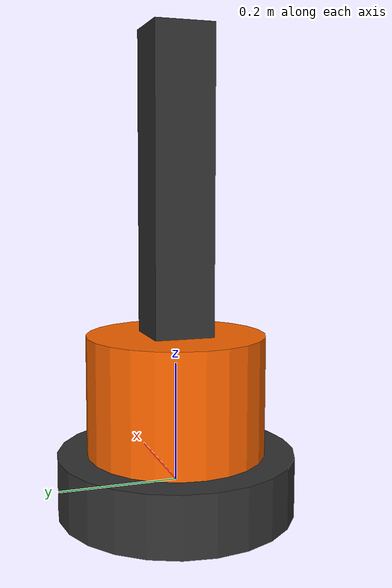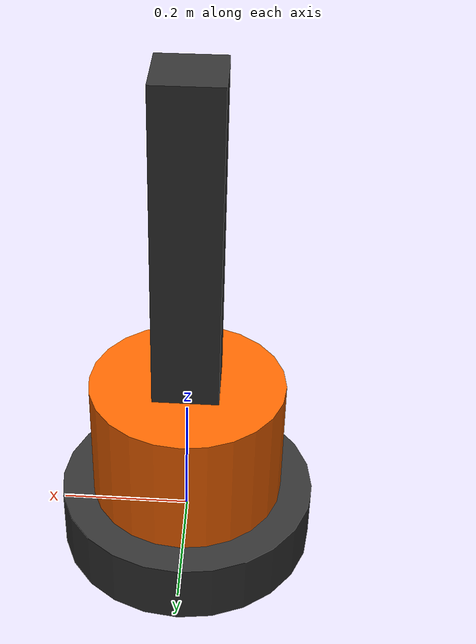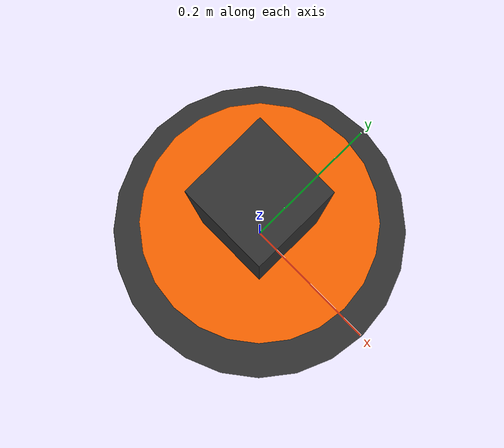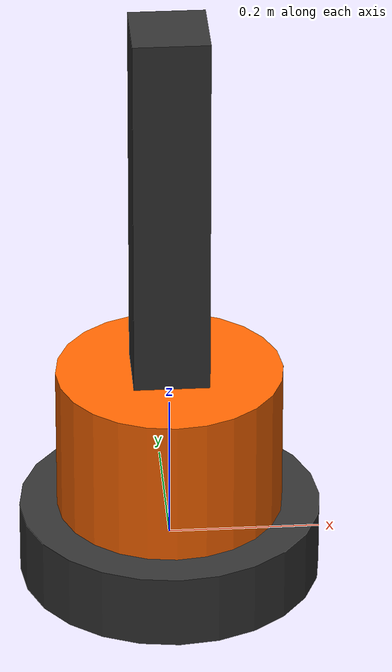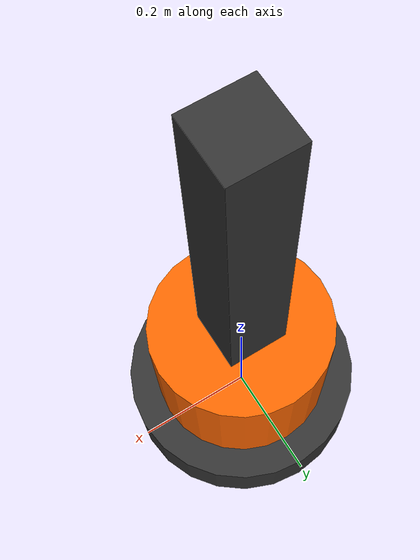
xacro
<?xml version="1.0"?>
<robot xmlns:xacro="http://www.ros.org/wiki/xacro" name="industrial_arm">
    <xacro:arg name="initial_positions_file" default="initial_positions.yaml" />

    <!-- Import industrial_arm urdf file -->
    <xacro:include filename="$(find industrial_arm_description)/urdf/arm.urdf.xacro" />

    <!-- Import control_xacro -->
    <xacro:include filename="industrial_arm.ros2_control.xacro" />

    <xacro:industrial_arm_ros2_control name="FakeSystem" initial_positions_file="$(arg initial_positions_file)"/>

</robot>

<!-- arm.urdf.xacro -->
<robot xmlns:xacro="http://www.ros.org/wiki/xacro" name="industrial_arm">

    <material name="industrial_orange">
        <color rgba="1.0 0.4 0.0 1.0"/>
    </material>
    <material name="dark_grey">
        <color rgba="0.2 0.2 0.2 1.0"/>
    </material>

    <link name="world"/>

    <joint name="virtual_joint" type="fixed">
        <parent link="world"/>
        <child link="base_link"/>
        <origin xyz="0 0 0" rpy="0 0 0"/>
    </joint>

    <link name="base_link">
        <visual>
            <geometry>
                <cylinder radius="0.2" length="0.1"/>
            </geometry>
            <material name="dark_grey"/>
        </visual>
        <collision>
            <geometry> <cylinder radius="0.2" length="0.1"/> </geometry>
        </collision>
        <inertial>
            <mass value="10.0"/>
            <origin xyz="0 0 0" rpy="0 0 0"/>
            <inertia ixx="0.108" ixy="0.0" ixz="0.0" iyy="0.108" iyz="0.0" izz="0.2"/>
        </inertial>
    </link>

    <joint name="joint_1" type="revolute">
        <parent link="base_link"/>
        <child link="link_1"/>
        <origin xyz="0 0 0.05" rpy="0 0 0"/>
        <axis xyz="0 0 1"/>
        <limit lower="-3.14" upper="3.14" effort="100.0" velocity="2.0"/>
        <dynamics damping="0.1" friction="0.1"/>
    </joint>

    <link name="link_1">
        <visual>
            <origin xyz="0 0 0.1" rpy="0 0 0"/>
            <geometry>
                <cylinder radius="0.15" length="0.2"/>
            </geometry>
            <material name="industrial_orange"/>
        </visual>
        <collision>
            <origin xyz="0 0 0.1" rpy="0 0 0"/>
            <geometry><cylinder radius="0.15" length="0.2"/></geometry>
        </collision>
        <inertial>
            <origin xyz="0 0 0.1" rpy="0 0 0"/>
            <mass value="5.0"/>
            <inertia ixx="0.044" ixy="0.0" ixz="0.0" iyy="0.044" iyz="0.0" izz="0.056"/>
        </inertial>
    </link>

    <joint name="joint_2" type="revolute">
        <parent link="link_1"/>
        <child link="link_2"/>
        <origin xyz="0 0 0.2" rpy="0 0 0"/>
        <axis xyz="0 1 0"/>
        <limit lower="-1.57" upper="1.57" effort="150.0" velocity="1.5"/>
        <dynamics damping="0.1" friction="0.1"/>
    </joint>

    <link name="link_2">
        <visual>
            <origin xyz="0 0 0.25" rpy="0 0 0"/>
            <geometry>
                <box size="0.1 0.1 0.5"/>
            </geometry>
            <material name="dark_grey"/>
        </visual>
        <collision>
            <origin xyz="0 0 0.25" rpy="0 0 0"/>
            <geometry><box size="0.1 0.1 0.5"/></geometry>
        </collision>
        <inertial>
            <origin xyz="0 0 0.25" rpy="0 0 0"/>
            <mass value="4.0"/>
            <inertia ixx="0.086" ixy="0.0" ixz="0.0" iyy="0.086" iyz="0.0" izz="0.006"/>
        </inertial>
    </link>

    <ros2_control name="GazeboSimSystem" type="system">
        <hardware>
            <plugin>gz_ros2_control/GazeboSimSystem</plugin>
        </hardware>

        <joint name="joint_1">
            <command_interface name="position">
                <param name="min">-3.14</param>
                <param name="max">3.14</param>
            </command_interface>
            <state_interface name="position"/>
            <state_interface name="velocity"/>
        </joint>

        <joint name="joint_2">
            <command_interface name="position">
                <param name="min">-1.57</param>
                <param name="max">1.57</param>
            </command_interface>
            <state_interface name="position"/>
            <state_interface name="velocity"/>
        </joint>
    </ros2_control>

    <gazebo>
        <plugin filename="gz_ros2_control-system" name="gz_ros2_control::GazeboSimROS2ControlPlugin">
            <parameters>$(find industrial_arm_description)/config/arm_controllers.yaml</parameters>
        </plugin>
    </gazebo>

</robot>
